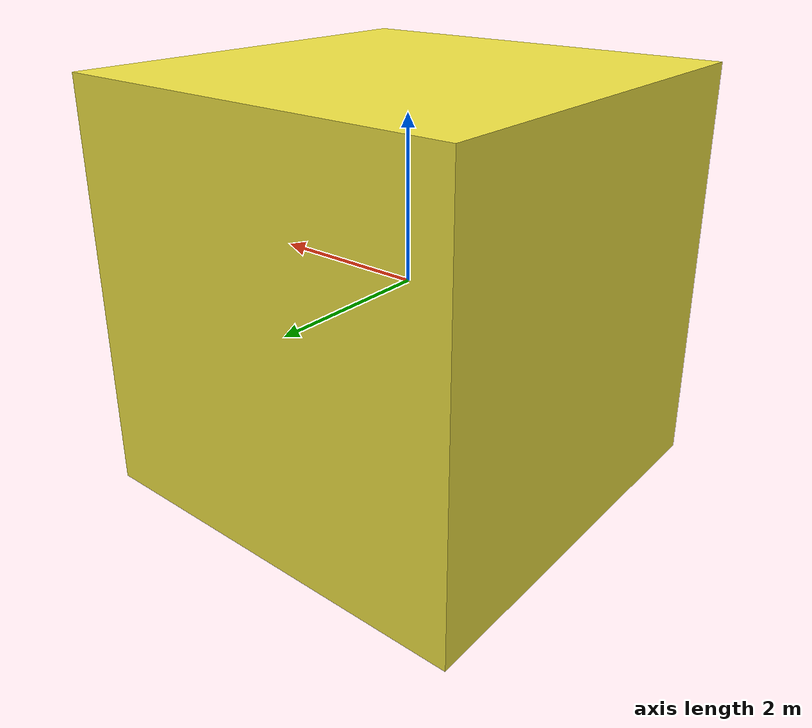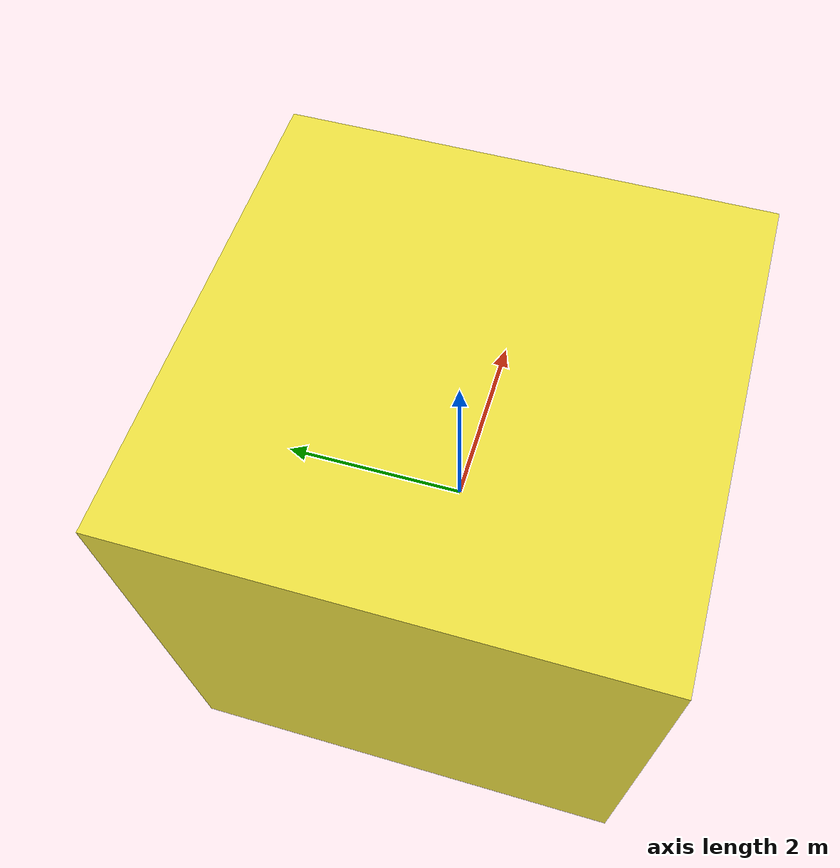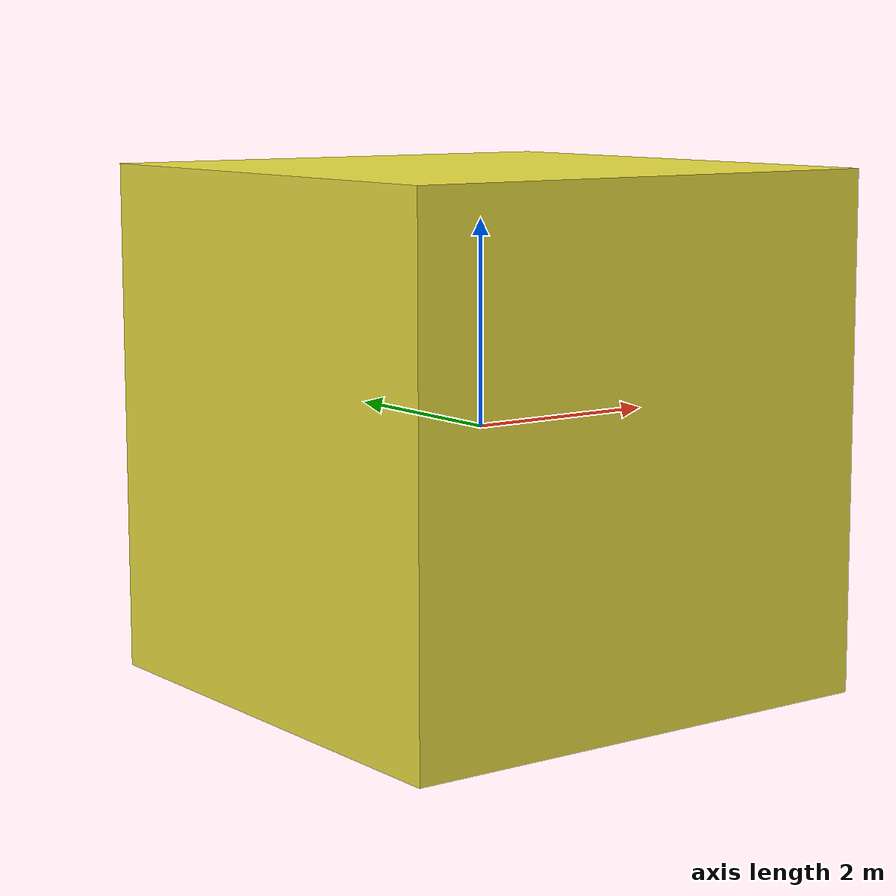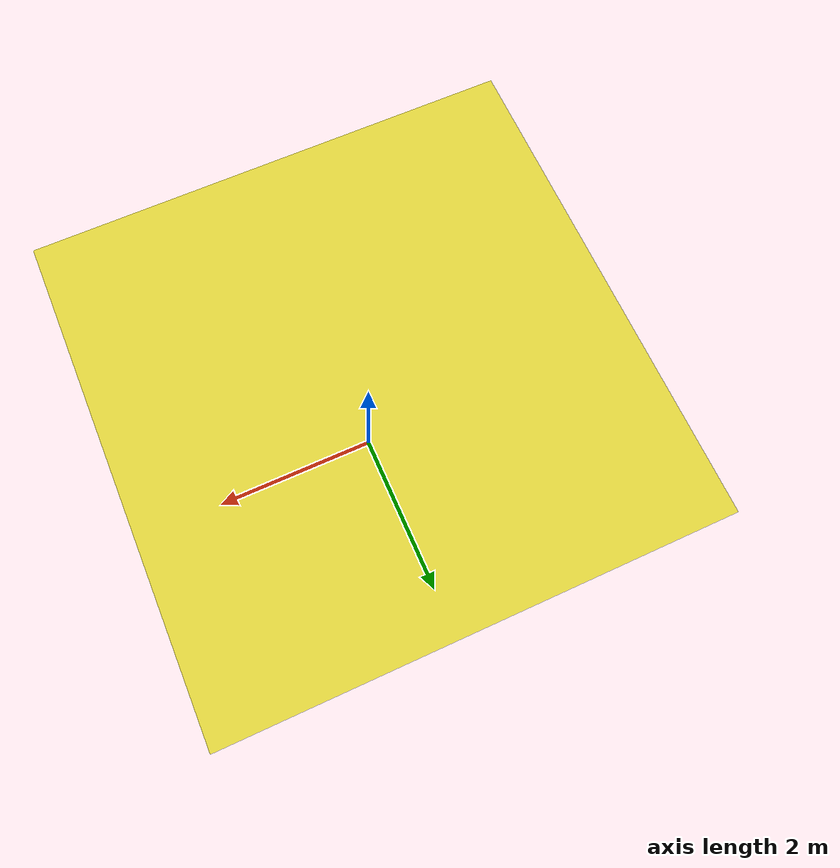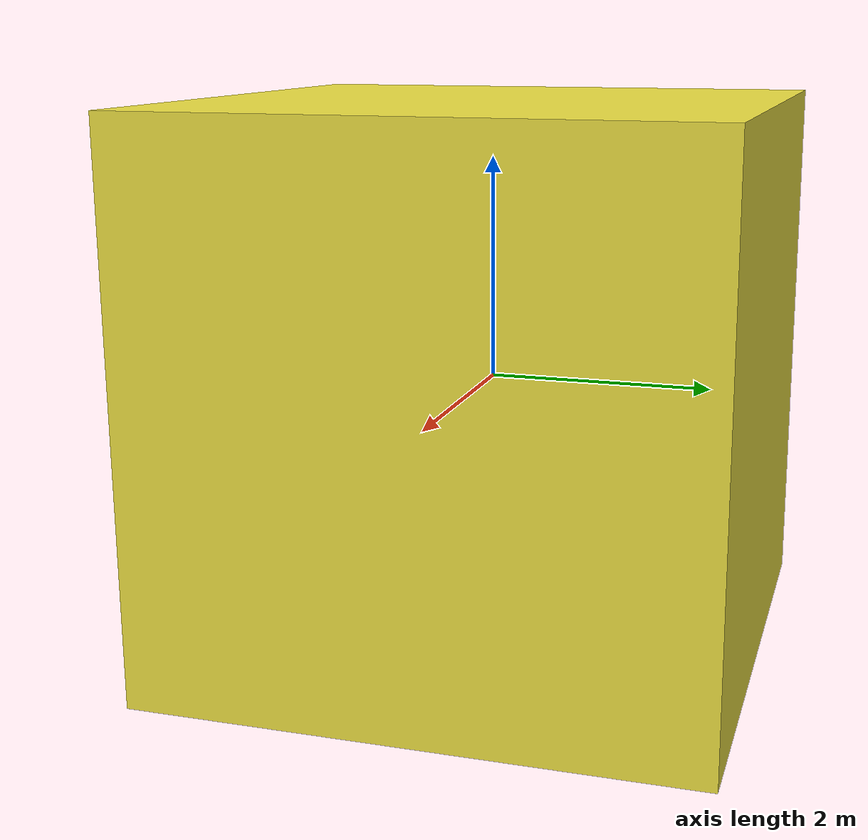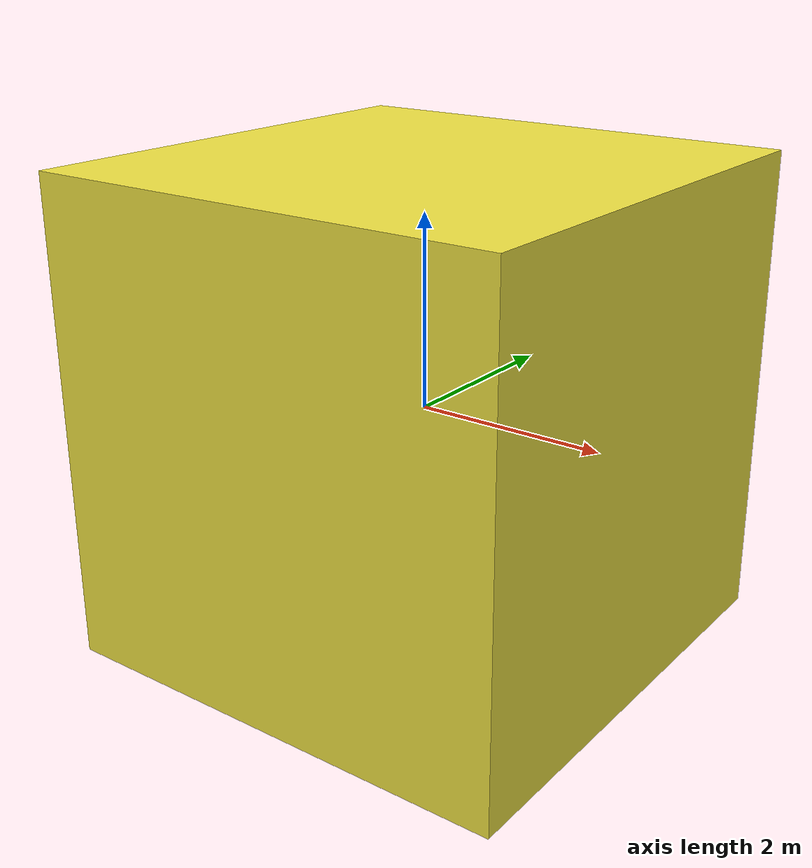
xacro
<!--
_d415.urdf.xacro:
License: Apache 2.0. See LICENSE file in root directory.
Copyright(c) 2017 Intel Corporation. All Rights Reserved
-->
<?xml version="1.0"?>
<robot name="realsense2_camera" xmlns:xacro="http://ros.org/wiki/xacro">
    <xacro:include filename="$(find autocar_description)/urdf/_d415.urdf.xacro" />

    <link name="base_link" />

    <xacro:sensor_d415 parent="base_link">
        <origin xyz="0 0 0" rpy="0 0 0"/>
    </xacro:sensor_d415>

    <joint name='my_joint' type='fixed'>
        <origin xyz="0 0 0" rpy="0 0 0"/>
        <parent link="base_link"/>
        <child link="my_link"/>
    </joint>

    <link name="my_link">
        <visual>
        <origin xyz="0 0 0" rpy="0 0 0"/>
                <geometry>
                    <box size="5 5 5"/>
                </geometry>
        </visual>
    </link>

</robot>

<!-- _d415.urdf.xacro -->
<robot name="sensor_d415" xmlns:xacro="http://ros.org/wiki/xacro">
  <xacro:macro name="sensor_d415" params="name:=camera parent *origin">
    <xacro:property name="M_PI" value="3.1415926535897931" />

    <!-- The following values are approximate, and the camera node
     publishing TF values with actual calibrated camera extrinsic values -->
    <xacro:property name="d415_cam_depth_to_left_ir_offset" value="0.0"/>
    <xacro:property name="d415_cam_depth_to_right_ir_offset" value="-0.055"/>
    <xacro:property name="d415_cam_depth_to_color_offset" value="0.015"/>

    <!-- The following values model the aluminum peripherial case for the
  	d415 camera, with the camera joint represented by the actual
  	peripherial camera tripod mount -->
    <xacro:property name="d415_cam_width" value="0.099"/>
    <xacro:property name="d415_cam_height" value="0.023"/>
    <xacro:property name="d415_cam_depth" value="0.02005"/>
    <xacro:property name="d415_cam_mount_from_center_offset" value="0.00987"/>

    <!-- The following offset is relative the the physical d415 camera peripherial
  	camera tripod mount -->
    <xacro:property name="d415_cam_depth_px" value="${d415_cam_mount_from_center_offset}"/>
    <xacro:property name="d415_cam_depth_py" value="0.020"/>
    <xacro:property name="d415_cam_depth_pz" value="${d415_cam_height/2}"/>

    <material name="${name}_aluminum">
	     <color rgba="0.5 0.5 0.5 1"/>
    </material>

    <!-- camera body, with origin at bottom screw mount -->
    <joint name="${name}_joint" type="fixed">
      <xacro:insert_block name="origin" />
      <parent link="${parent}"/>
      <child link="${name}_bottom_screw_frame" />
    </joint>

    <link name="${name}_bottom_screw_frame"/>

    <joint name="${name}_link_joint" type="fixed">
      <origin xyz="0 ${d415_cam_depth_py} ${d415_cam_depth_pz}" rpy="0 0 0"/>
      <parent link="${name}_bottom_screw_frame"/>
      <child link="${name}_link" />
    </joint>

    <link name="${name}_link">
      <visual>
      <origin xyz="${d415_cam_mount_from_center_offset} ${-d415_cam_depth_py} 0" rpy="${M_PI/2} 0 ${M_PI/2}"/>
        <geometry>
          <box size="${d415_cam_width} ${d415_cam_height} ${d415_cam_depth}"/>
        </geometry>
      </visual>
      <collision>
        <origin xyz="0 ${-d415_cam_depth_py} 0" rpy="0 0 0"/>
        <geometry>
        <box size="${d415_cam_depth} ${d415_cam_width} ${d415_cam_height}"/>
        </geometry>
      </collision>
      <inertial>
        <!-- The following are not reliable values, and should not be used for modeling -->
        <mass value="0.564" />
        <origin xyz="0 0 0" />
        <inertia ixx="0.003881243" ixy="0.0" ixz="0.0" iyy="0.000498940" iyz="0.0" izz="0.003879257" />
      </inertial>
    </link>

    <!-- camera depth joints and links -->
    <joint name="${name}_depth_joint" type="fixed">
      <origin xyz="0 0 0" rpy="0 0 0"/>
      <parent link="${name}_link"/>
      <child link="${name}_depth_frame" />
    </joint>
    <link name="${name}_depth_frame"/>

    <joint name="${name}_depth_optical_joint" type="fixed">
      <origin xyz="0 0 0" rpy="${-M_PI/2} 0 ${-M_PI/2}" />
      <parent link="${name}_depth_frame" />
      <child link="${name}_depth_optical_frame" />
    </joint>
    <link name="${name}_depth_optical_frame"/>

    <!-- camera left IR joints and links -->
    <joint name="${name}_left_ir_joint" type="fixed">
      <origin xyz="0 ${d415_cam_depth_to_left_ir_offset} 0" rpy="0 0 0" />
      <parent link="${name}_depth_frame" />
      <child link="${name}_left_ir_frame" />
    </joint>
    <link name="${name}_left_ir_frame"/>

    <joint name="${name}_left_ir_optical_joint" type="fixed">
      <origin xyz="0 0 0" rpy="${-M_PI/2} 0 ${-M_PI/2}" />
      <parent link="${name}_left_ir_frame" />
      <child link="${name}_left_ir_optical_frame" />
    </joint>
    <link name="${name}_left_ir_optical_frame"/>

    <!-- camera right IR joints and links -->
    <joint name="${name}_right_ir_joint" type="fixed">
      <origin xyz="0 ${d415_cam_depth_to_right_ir_offset} 0" rpy="0 0 0" />
      <parent link="${name}_depth_frame" />
      <child link="${name}_right_ir_frame" />
    </joint>
    <link name="${name}_right_ir_frame"/>

    <joint name="${name}_right_ir_optical_joint" type="fixed">
      <origin xyz="0 0 0" rpy="${-M_PI/2} 0 ${-M_PI/2}" />
      <parent link="${name}_right_ir_frame" />
      <child link="${name}_right_ir_optical_frame" />
    </joint>
    <link name="${name}_right_ir_optical_frame"/>

    <!-- camera color joints and links -->
    <joint name="${name}_color_joint" type="fixed">
      <origin xyz="0 ${d415_cam_depth_to_color_offset} 0" rpy="0 0 0" />
      <parent link="${name}_depth_frame" />
      <child link="${name}_color_frame" />
    </joint>
    <link name="${name}_color_frame"/>

    <joint name="${name}_color_optical_joint" type="fixed">
      <origin xyz="0 0 0" rpy="${-M_PI/2} 0 ${-M_PI/2}" />
      <parent link="${name}_color_frame" />
      <child link="${name}_color_optical_frame" />
    </joint>
    <link name="${name}_color_optical_frame"/>
  </xacro:macro>
</robot>
